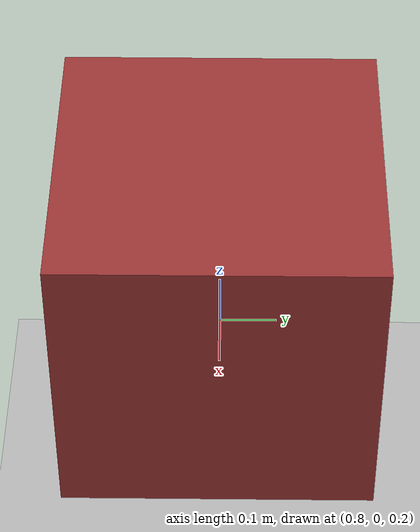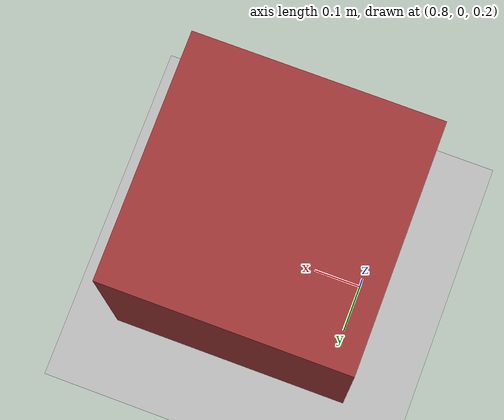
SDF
<?xml version="1.6" ?>
<sdf version="1.7">
  <world name="rgbd_demo_world">
    <gravity>0 0 -9.81</gravity>

    <!-- Simple ground plane -->
    <model name="ground">
      <static>true</static>
      <link name="link">
        <collision name="collision">
          <geometry><plane><normal>0 0 1</normal><size>50 50</size></plane></geometry>
        </collision>
        <visual name="visual">
          <geometry><plane><normal>0 0 1</normal><size>50 50</size></plane></geometry>
          <material><ambient>0.7 0.7 0.7 1</ambient></material>
        </visual>
      </link>
    </model>

    <!-- A box to look at -->
    <model name="box">
      <pose>1 0 0.5 0 0 0</pose>
      <link name="link">
        <inertial><mass>1</mass></inertial>
        <collision name="collision">
          <geometry><box><size>0.5 0.5 0.5</size></box></geometry>
        </collision>
        <visual name="visual">
          <geometry><box><size>0.5 0.5 0.5</size></box></geometry>
          <material><ambient>0.6 0.2 0.2 1</ambient></material>
        </visual>
      </link>
    </model>

    <!-- RGB-D camera looking at the box -->
    <model name="rgbd_cam">
      <pose>0 0 1.0 0 0 0</pose>
      <static>true</static>
      <link name="link">
        <sensor name="camera" type="rgbd_camera">
          <always_on>true</always_on>
          <update_rate>30</update_rate>
          <topic>/camera</topic>
          <pose>0 0 0 0 0 0</pose>
          <camera>
            <horizontal_fov>1.047</horizontal_fov>
            <image><width>640</width><height>480</height><format>R8G8B8</format></image>
            <clip><near>0.1</near><far>8.0</far></clip>
          </camera>
          <depth_camera>
            <clip><near>0.1</near><far>8.0</far></clip>
          </depth_camera>
        </sensor>
      </link>
    </model>

  </world>
</sdf>
